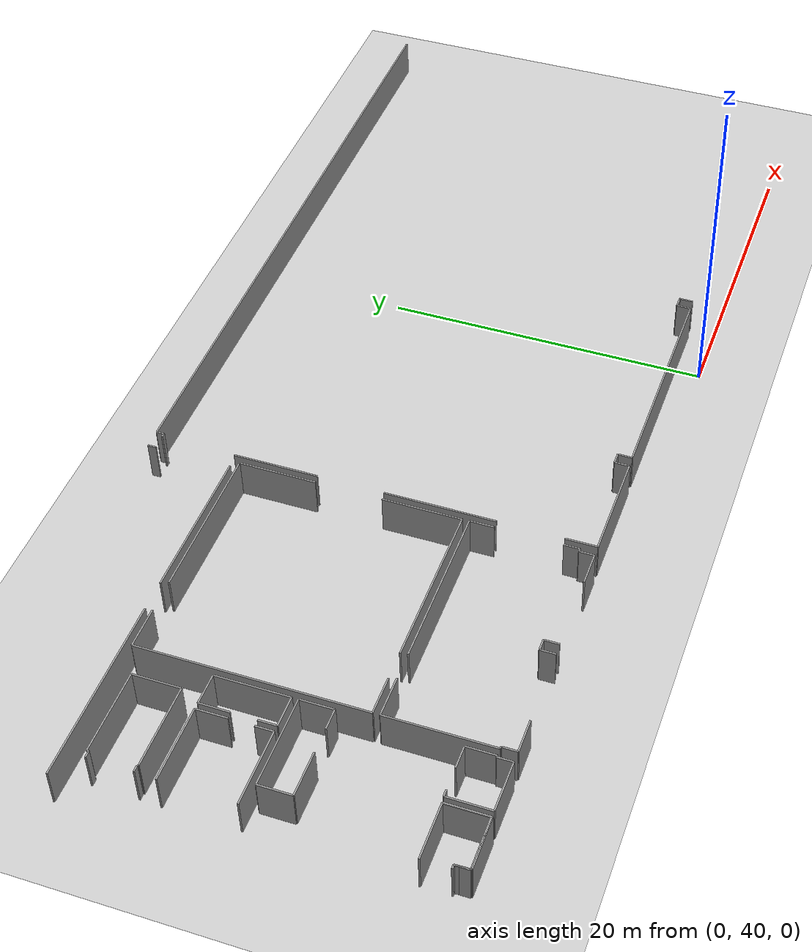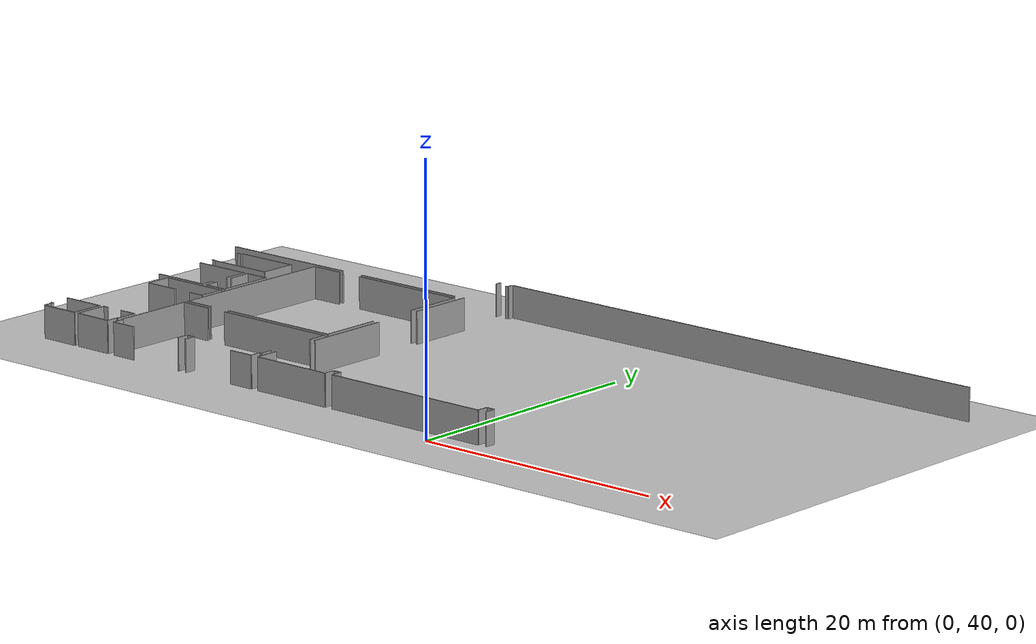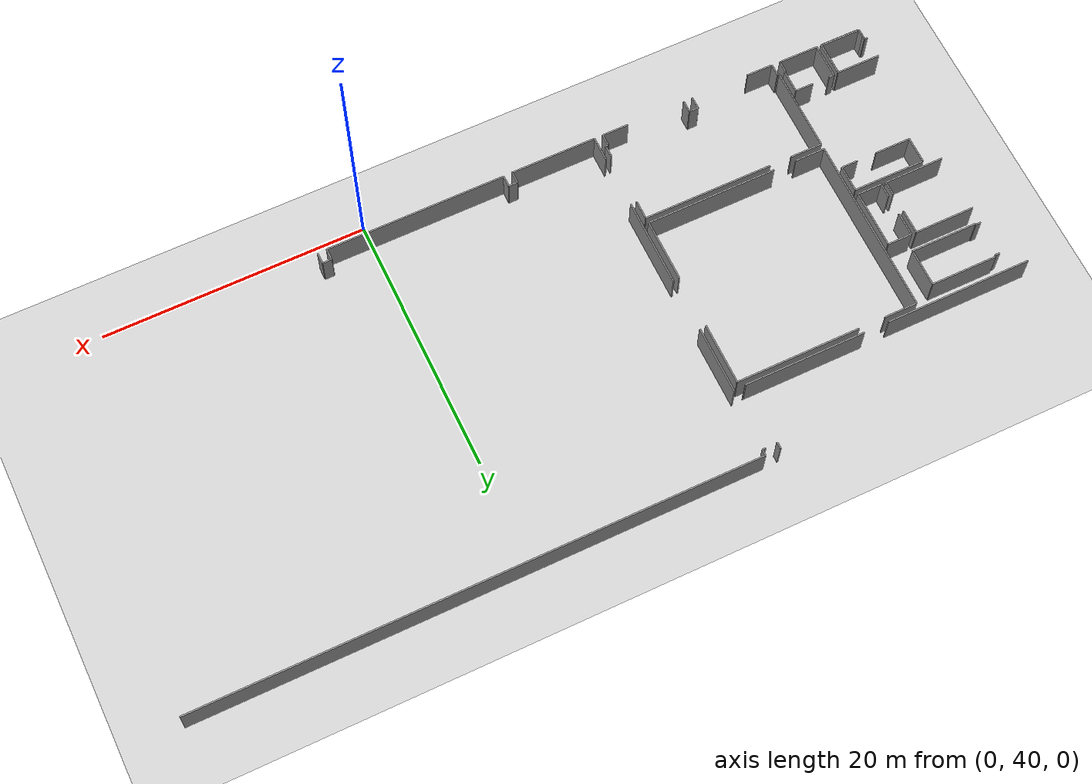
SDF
<sdf version="1.6">
 <world name="default">
  <model name="ground_plane">
   <static>1</static>
   <link name="link">
    <collision name="collision">
     <geometry><plane><normal>0 0 1</normal><size>100 100</size></plane></geometry>
     <surface><friction><ode><mu>100</mu><mu2>50</mu2></ode></friction></surface>
    </collision>
    <visual name="visual">
     <cast_shadows>0</cast_shadows>
     <geometry><plane><normal>0 0 1</normal><size>100 100</size></plane></geometry>
     <material>
      <script><uri>file://media/materials/scripts/gazebo.material</uri><name>Gazebo/Grey</name></script>
     </material>
    </visual>
   </link>
  </model>
  <model name="0510035519_A_40_1_102">
   <static>1</static>
   <link name="Wall_176">
    <collision name="Wall_176_Collision">
     <geometry><box><size>0.525098487737 0.1 2.5</size></box></geometry>
     <pose>0.262549243868 0 1.25 0 0 0</pose>
    </collision>
    <visual name="Wall_176_Visual">
     <pose>0.262549243868 0 1.25 0 0 0</pose>
     <geometry><box><size>0.525098487737 0.1 2.5</size></box></geometry>
     <material>
      <script><uri>file://media/materials/scripts/gazebo.material</uri><name>Gazebo/Grey</name></script>
      <ambient>1 1 1 1</ambient>
     </material>
    </visual>
    <pose>98.0942940653 -0.10776464608 0 0 0 -1.57079632679</pose>
   </link>
   <link name="Wall_177">
    <collision name="Wall_177_Collision">
     <geometry><box><size>0.0571864277545 0.1 2.5</size></box></geometry>
     <pose>0.0285932138772 0 1.25 0 0 0</pose>
    </collision>
    <visual name="Wall_177_Visual">
     <pose>0.0285932138772 0 1.25 0 0 0</pose>
     <geometry><box><size>0.0571864277545 0.1 2.5</size></box></geometry>
     <material>
      <script><uri>file://media/materials/scripts/gazebo.material</uri><name>Gazebo/Grey</name></script>
      <ambient>1 1 1 1</ambient>
     </material>
    </visual>
    <pose>98.0942940653 -5.26242216292 0 0 0 -1.57079632679</pose>
   </link>
   <link name="Wall_178">
    <collision name="Wall_178_Collision">
     <geometry><box><size>9.27945101029 0.1 2.5</size></box></geometry>
     <pose>4.63972550515 0 1.25 0 0 0</pose>
    </collision>
    <visual name="Wall_178_Visual">
     <pose>4.63972550515 0 1.25 0 0 0</pose>
     <geometry><box><size>9.27945101029 0.1 2.5</size></box></geometry>
     <material>
      <script><uri>file://media/materials/scripts/gazebo.material</uri><name>Gazebo/Grey</name></script>
      <ambient>1 1 1 1</ambient>
     </material>
    </visual>
    <pose>98.0942940653 -5.31960859067 0 0 0 3.14159265359</pose>
   </link>
   <link name="Wall_179">
    <collision name="Wall_179_Collision">
     <geometry><box><size>11.172194688 0.1 2.5</size></box></geometry>
     <pose>5.58609734401 0 1.25 0 0 0</pose>
    </collision>
    <visual name="Wall_179_Visual">
     <pose>5.58609734401 0 1.25 0 0 0</pose>
     <geometry><box><size>11.172194688 0.1 2.5</size></box></geometry>
     <material>
      <script><uri>file://media/materials/scripts/gazebo.material</uri><name>Gazebo/Grey</name></script>
      <ambient>1 1 1 1</ambient>
     </material>
    </visual>
    <pose>86.9264201296 -5.31960859067 0 0 0 3.14159265359</pose>
   </link>
   <link name="Wall_185">
    <collision name="Wall_185_Collision">
     <geometry><box><size>42.4330918795 0.1 2.5</size></box></geometry>
     <pose>21.2165459398 0 1.25 0 0 0</pose>
    </collision>
    <visual name="Wall_185_Visual">
     <pose>21.2165459398 0 1.25 0 0 0</pose>
     <geometry><box><size>42.4330918795 0.1 2.5</size></box></geometry>
     <material>
      <script><uri>file://media/materials/scripts/gazebo.material</uri><name>Gazebo/Grey</name></script>
      <ambient>1 1 1 1</ambient>
     </material>
    </visual>
    <pose>99.2474266108 -0.114881179311 0 0 0 0.0</pose>
   </link>
   <link name="Wall_197">
    <collision name="Wall_197_Collision">
     <geometry><box><size>0.855763121108 0.1 2.5</size></box></geometry>
     <pose>0.427881560554 0 1.25 0 0 0</pose>
    </collision>
    <visual name="Wall_197_Visual">
     <pose>0.427881560554 0 1.25 0 0 0</pose>
     <geometry><box><size>0.855763121108 0.1 2.5</size></box></geometry>
     <material>
      <script><uri>file://media/materials/scripts/gazebo.material</uri><name>Gazebo/Grey</name></script>
      <ambient>1 1 1 1</ambient>
     </material>
    </visual>
    <pose>120.61227602 -27.1193290126 0 0 0 1.57079632679</pose>
   </link>
   <link name="Wall_198">
    <collision name="Wall_198_Collision">
     <geometry><box><size>0.689541237768 0.1 2.5</size></box></geometry>
     <pose>0.344770618884 0 1.25 0 0 0</pose>
    </collision>
    <visual name="Wall_198_Visual">
     <pose>0.344770618884 0 1.25 0 0 0</pose>
     <geometry><box><size>0.689541237768 0.1 2.5</size></box></geometry>
     <material>
      <script><uri>file://media/materials/scripts/gazebo.material</uri><name>Gazebo/Grey</name></script>
      <ambient>1 1 1 1</ambient>
     </material>
    </visual>
    <pose>120.61227602 -26.2635658915 0 0 0 3.14159265359</pose>
   </link>
   <link name="Wall_199">
    <collision name="Wall_199_Collision">
     <geometry><box><size>0.872537806583 0.1 2.5</size></box></geometry>
     <pose>0.436268903291 0 1.25 0 0 0</pose>
    </collision>
    <visual name="Wall_199_Visual">
     <pose>0.436268903291 0 1.25 0 0 0</pose>
     <geometry><box><size>0.872537806583 0.1 2.5</size></box></geometry>
     <material>
      <script><uri>file://media/materials/scripts/gazebo.material</uri><name>Gazebo/Grey</name></script>
      <ambient>1 1 1 1</ambient>
     </material>
    </visual>
    <pose>119.922734782 -26.2635658915 0 0 0 -1.57079632679</pose>
   </link>
   <link name="Wall_200">
    <collision name="Wall_200_Collision">
     <geometry><box><size>13.717117804 0.1 2.5</size></box></geometry>
     <pose>6.85855890202 0 1.25 0 0 0</pose>
    </collision>
    <visual name="Wall_200_Visual">
     <pose>6.85855890202 0 1.25 0 0 0</pose>
     <geometry><box><size>13.717117804 0.1 2.5</size></box></geometry>
     <material>
      <script><uri>file://media/materials/scripts/gazebo.material</uri><name>Gazebo/Grey</name></script>
      <ambient>1 1 1 1</ambient>
     </material>
    </visual>
    <pose>119.922734782 -27.1361036981 0 0 0 3.14159265359</pose>
   </link>
   <link name="Wall_201">
    <collision name="Wall_201_Collision">
     <geometry><box><size>0.867200406659 0.1 2.5</size></box></geometry>
     <pose>0.43360020333 0 1.25 0 0 0</pose>
    </collision>
    <visual name="Wall_201_Visual">
     <pose>0.43360020333 0 1.25 0 0 0</pose>
     <geometry><box><size>0.867200406659 0.1 2.5</size></box></geometry>
     <material>
      <script><uri>file://media/materials/scripts/gazebo.material</uri><name>Gazebo/Grey</name></script>
      <ambient>1 1 1 1</ambient>
     </material>
    </visual>
    <pose>106.205616978 -27.1361036981 0 0 0 1.57079632679</pose>
   </link>
   <link name="Wall_202">
    <collision name="Wall_202_Collision">
     <geometry><box><size>0.686237133054 0.1 2.5</size></box></geometry>
     <pose>0.343118566527 0 1.25 0 0 0</pose>
    </collision>
    <visual name="Wall_202_Visual">
     <pose>0.343118566527 0 1.25 0 0 0</pose>
     <geometry><box><size>0.686237133054 0.1 2.5</size></box></geometry>
     <material>
      <script><uri>file://media/materials/scripts/gazebo.material</uri><name>Gazebo/Grey</name></script>
      <ambient>1 1 1 1</ambient>
     </material>
    </visual>
    <pose>106.205616978 -26.2689032914 0 0 0 3.14159265359</pose>
   </link>
   <link name="Wall_203">
    <collision name="Wall_203_Collision">
     <geometry><box><size>0.888804168255 0.1 2.5</size></box></geometry>
     <pose>0.444402084128 0 1.25 0 0 0</pose>
    </collision>
    <visual name="Wall_203_Visual">
     <pose>0.444402084128 0 1.25 0 0 0</pose>
     <geometry><box><size>0.888804168255 0.1 2.5</size></box></geometry>
     <material>
      <script><uri>file://media/materials/scripts/gazebo.material</uri><name>Gazebo/Grey</name></script>
      <ambient>1 1 1 1</ambient>
     </material>
    </visual>
    <pose>105.519379845 -26.2689032914 0 0 0 -1.57079632679</pose>
   </link>
   <link name="Wall_204">
    <collision name="Wall_204_Collision">
     <geometry><box><size>6.53348583047 0.1 2.5</size></box></geometry>
     <pose>3.26674291524 0 1.25 0 0 0</pose>
    </collision>
    <visual name="Wall_204_Visual">
     <pose>3.26674291524 0 1.25 0 0 0</pose>
     <geometry><box><size>6.53348583047 0.1 2.5</size></box></geometry>
     <material>
      <script><uri>file://media/materials/scripts/gazebo.material</uri><name>Gazebo/Grey</name></script>
      <ambient>1 1 1 1</ambient>
     </material>
    </visual>
    <pose>105.519379845 -27.1577074597 0 0 0 3.14159265359</pose>
   </link>
   <link name="Wall_205">
    <collision name="Wall_205_Collision">
     <geometry><box><size>1.91333079171 0.1 2.5</size></box></geometry>
     <pose>0.956665395857 0 1.25 0 0 0</pose>
    </collision>
    <visual name="Wall_205_Visual">
     <pose>0.956665395857 0 1.25 0 0 0</pose>
     <geometry><box><size>1.91333079171 0.1 2.5</size></box></geometry>
     <material>
      <script><uri>file://media/materials/scripts/gazebo.material</uri><name>Gazebo/Grey</name></script>
      <ambient>1 1 1 1</ambient>
     </material>
    </visual>
    <pose>98.9858940145 -27.1577074597 0 0 0 1.57079632679</pose>
   </link>
   <link name="Wall_206">
    <collision name="Wall_206_Collision">
     <geometry><box><size>6.7640106748 0.1 2.5</size></box></geometry>
     <pose>3.3820053374 0 1.25 0 0 0</pose>
    </collision>
    <visual name="Wall_206_Visual">
     <pose>3.3820053374 0 1.25 0 0 0</pose>
     <geometry><box><size>6.7640106748 0.1 2.5</size></box></geometry>
     <material>
      <script><uri>file://media/materials/scripts/gazebo.material</uri><name>Gazebo/Grey</name></script>
      <ambient>1 1 1 1</ambient>
     </material>
    </visual>
    <pose>98.9858940145 -21.2408184013 0 0 0 1.57079632679</pose>
   </link>
   <link name="Wall_207">
    <collision name="Wall_207_Collision">
     <geometry><box><size>5.20498157326 0.1 2.5</size></box></geometry>
     <pose>2.60249078663 0 1.25 0 0 0</pose>
    </collision>
    <visual name="Wall_207_Visual">
     <pose>2.60249078663 0 1.25 0 0 0</pose>
     <geometry><box><size>5.20498157326 0.1 2.5</size></box></geometry>
     <material>
      <script><uri>file://media/materials/scripts/gazebo.material</uri><name>Gazebo/Grey</name></script>
      <ambient>1 1 1 1</ambient>
     </material>
    </visual>
    <pose>98.9858940145 -10.4025924514 0 0 0 1.57079632679</pose>
   </link>
   <link name="Wall_208">
    <collision name="Wall_208_Collision">
     <geometry><box><size>0.247807853603 0.1 2.5</size></box></geometry>
     <pose>0.123903926801 0 1.25 0 0 0</pose>
    </collision>
    <visual name="Wall_208_Visual">
     <pose>0.123903926801 0 1.25 0 0 0</pose>
     <geometry><box><size>0.247807853603 0.1 2.5</size></box></geometry>
     <material>
      <script><uri>file://media/materials/scripts/gazebo.material</uri><name>Gazebo/Grey</name></script>
      <ambient>1 1 1 1</ambient>
     </material>
    </visual>
    <pose>98.9858940145 -0.584572372601 0 0 0 0.0</pose>
   </link>
   <link name="Wall_209">
    <collision name="Wall_209_Collision">
     <geometry><box><size>0.469891674341 0.1 2.5</size></box></geometry>
     <pose>0.234945837171 0 1.25 0 0 0</pose>
    </collision>
    <visual name="Wall_209_Visual">
     <pose>0.234945837171 0 1.25 0 0 0</pose>
     <geometry><box><size>0.469891674341 0.1 2.5</size></box></geometry>
     <material>
      <script><uri>file://media/materials/scripts/gazebo.material</uri><name>Gazebo/Grey</name></script>
      <ambient>1 1 1 1</ambient>
     </material>
    </visual>
    <pose>99.2337018681 -0.584572372601 0 0 0 1.54158386008</pose>
   </link>
   <link name="Wall_216">
    <collision name="Wall_216_Collision">
     <geometry><box><size>13.622061253 0.1 2.5</size></box></geometry>
     <pose>6.81103062651 0 1.25 0 0 0</pose>
    </collision>
    <visual name="Wall_216_Visual">
     <pose>6.81103062651 0 1.25 0 0 0</pose>
     <geometry><box><size>13.622061253 0.1 2.5</size></box></geometry>
     <material>
      <script><uri>file://media/materials/scripts/gazebo.material</uri><name>Gazebo/Grey</name></script>
      <ambient>1 1 1 1</ambient>
     </material>
    </visual>
    <pose>84.4501207269 -19.3671368662 0 0 0 1.57079632679</pose>
   </link>
   <link name="Wall_217">
    <collision name="Wall_217_Collision">
     <geometry><box><size>2.50222391663 0.1 2.5</size></box></geometry>
     <pose>1.25111195832 0 1.25 0 0 0</pose>
    </collision>
    <visual name="Wall_217_Visual">
     <pose>1.25111195832 0 1.25 0 0 0</pose>
     <geometry><box><size>2.50222391663 0.1 2.5</size></box></geometry>
     <material>
      <script><uri>file://media/materials/scripts/gazebo.material</uri><name>Gazebo/Grey</name></script>
      <ambient>1 1 1 1</ambient>
     </material>
    </visual>
    <pose>84.4501207269 -5.74507561317 0 0 0 0.0</pose>
   </link>
   <link name="Wall_218">
    <collision name="Wall_218_Collision">
     <geometry><box><size>9.49752192146 0.1 2.5</size></box></geometry>
     <pose>4.74876096073 0 1.25 0 0 0</pose>
    </collision>
    <visual name="Wall_218_Visual">
     <pose>4.74876096073 0 1.25 0 0 0</pose>
     <geometry><box><size>9.49752192146 0.1 2.5</size></box></geometry>
     <material>
      <script><uri>file://media/materials/scripts/gazebo.material</uri><name>Gazebo/Grey</name></script>
      <ambient>1 1 1 1</ambient>
     </material>
    </visual>
    <pose>88.9993645952 -5.74507561317 0 0 0 0.0</pose>
   </link>
   <link name="Wall_219">
    <collision name="Wall_219_Collision">
     <geometry><box><size>4.73757783708 0.1 2.5</size></box></geometry>
     <pose>2.36878891854 0 1.25 0 0 0</pose>
    </collision>
    <visual name="Wall_219_Visual">
     <pose>2.36878891854 0 1.25 0 0 0</pose>
     <geometry><box><size>4.73757783708 0.1 2.5</size></box></geometry>
     <material>
      <script><uri>file://media/materials/scripts/gazebo.material</uri><name>Gazebo/Grey</name></script>
      <ambient>1 1 1 1</ambient>
     </material>
    </visual>
    <pose>98.4968865167 -5.74507561317 0 0 0 -1.57079632679</pose>
   </link>
   <link name="Wall_220">
    <collision name="Wall_220_Collision">
     <geometry><box><size>4.81077646461 0.1 2.5</size></box></geometry>
     <pose>2.4053882323 0 1.25 0 0 0</pose>
    </collision>
    <visual name="Wall_220_Visual">
     <pose>2.4053882323 0 1.25 0 0 0</pose>
     <geometry><box><size>4.81077646461 0.1 2.5</size></box></geometry>
     <material>
      <script><uri>file://media/materials/scripts/gazebo.material</uri><name>Gazebo/Grey</name></script>
      <ambient>1 1 1 1</ambient>
     </material>
    </visual>
    <pose>98.4968865167 -14.5507688398 0 0 0 -1.57079632679</pose>
   </link>
   <link name="Wall_221">
    <collision name="Wall_221_Collision">
     <geometry><box><size>9.99034184776 0.1 2.5</size></box></geometry>
     <pose>4.99517092388 0 1.25 0 0 0</pose>
    </collision>
    <visual name="Wall_221_Visual">
     <pose>4.99517092388 0 1.25 0 0 0</pose>
     <geometry><box><size>9.99034184776 0.1 2.5</size></box></geometry>
     <material>
      <script><uri>file://media/materials/scripts/gazebo.material</uri><name>Gazebo/Grey</name></script>
      <ambient>1 1 1 1</ambient>
     </material>
    </visual>
    <pose>98.4968865167 -19.3615453044 0 0 0 3.14159265359</pose>
   </link>
   <link name="Wall_222">
    <collision name="Wall_222_Collision">
     <geometry><box><size>2.31338838163 0.1 2.5</size></box></geometry>
     <pose>1.15669419082 0 1.25 0 0 0</pose>
    </collision>
    <visual name="Wall_222_Visual">
     <pose>1.15669419082 0 1.25 0 0 0</pose>
     <geometry><box><size>2.31338838163 0.1 2.5</size></box></geometry>
     <material>
      <script><uri>file://media/materials/scripts/gazebo.material</uri><name>Gazebo/Grey</name></script>
      <ambient>1 1 1 1</ambient>
     </material>
    </visual>
    <pose>86.763502351 -19.3615453044 0 0 0 -3.1391756071</pose>
   </link>
   <link name="Wall_223">
    <collision name="Wall_223_Collision">
     <geometry><box><size>6.46943703139 0.1 2.5</size></box></geometry>
     <pose>3.23471851569 0 1.25 0 0 0</pose>
    </collision>
    <visual name="Wall_223_Visual">
     <pose>3.23471851569 0 1.25 0 0 0</pose>
     <geometry><box><size>6.46943703139 0.1 2.5</size></box></geometry>
     <material>
      <script><uri>file://media/materials/scripts/gazebo.material</uri><name>Gazebo/Grey</name></script>
      <ambient>1 1 1 1</ambient>
     </material>
    </visual>
    <pose>84.4534248316 -26.2551785487 0 0 0 1.57079632679</pose>
   </link>
   <link name="Wall_224">
    <collision name="Wall_224_Collision">
     <geometry><box><size>2.45393315542 0.1 2.5</size></box></geometry>
     <pose>1.22696657771 0 1.25 0 0 0</pose>
    </collision>
    <visual name="Wall_224_Visual">
     <pose>1.22696657771 0 1.25 0 0 0</pose>
     <geometry><box><size>2.45393315542 0.1 2.5</size></box></geometry>
     <material>
      <script><uri>file://media/materials/scripts/gazebo.material</uri><name>Gazebo/Grey</name></script>
      <ambient>1 1 1 1</ambient>
     </material>
    </visual>
    <pose>84.4534248316 -19.7857415173 0 0 0 0.0</pose>
   </link>
   <link name="Wall_225">
    <collision name="Wall_225_Collision">
     <geometry><box><size>9.93823865803 0.1 2.5</size></box></geometry>
     <pose>4.96911932901 0 1.25 0 0 0</pose>
    </collision>
    <visual name="Wall_225_Visual">
     <pose>4.96911932901 0 1.25 0 0 0</pose>
     <geometry><box><size>9.93823865803 0.1 2.5</size></box></geometry>
     <material>
      <script><uri>file://media/materials/scripts/gazebo.material</uri><name>Gazebo/Grey</name></script>
      <ambient>1 1 1 1</ambient>
     </material>
    </visual>
    <pose>88.5888931249 -19.7857415173 0 0 0 0.0</pose>
   </link>
   <link name="Wall_226">
    <collision name="Wall_226_Collision">
     <geometry><box><size>1.47668064557 0.1 2.5</size></box></geometry>
     <pose>0.738340322786 0 1.25 0 0 0</pose>
    </collision>
    <visual name="Wall_226_Visual">
     <pose>0.738340322786 0 1.25 0 0 0</pose>
     <geometry><box><size>1.47668064557 0.1 2.5</size></box></geometry>
     <material>
      <script><uri>file://media/materials/scripts/gazebo.material</uri><name>Gazebo/Grey</name></script>
      <ambient>1 1 1 1</ambient>
     </material>
    </visual>
    <pose>98.5271317829 -19.7857415173 0 0 0 -1.57079632679</pose>
   </link>
   <link name="Wall_227">
    <collision name="Wall_227_Collision">
     <geometry><box><size>0.950819672131 0.1 2.5</size></box></geometry>
     <pose>0.475409836066 0 1.25 0 0 0</pose>
    </collision>
    <visual name="Wall_227_Visual">
     <pose>0.475409836066 0 1.25 0 0 0</pose>
     <geometry><box><size>0.950819672131 0.1 2.5</size></box></geometry>
     <material>
      <script><uri>file://media/materials/scripts/gazebo.material</uri><name>Gazebo/Grey</name></script>
      <ambient>1 1 1 1</ambient>
     </material>
    </visual>
    <pose>98.5271317829 -25.3180836193 0 0 0 -1.57079632679</pose>
   </link>
   <link name="Wall_228">
    <collision name="Wall_228_Collision">
     <geometry><box><size>0.196721311475 0.1 2.5</size></box></geometry>
     <pose>0.0983606557377 0 1.25 0 0 0</pose>
    </collision>
    <visual name="Wall_228_Visual">
     <pose>0.0983606557377 0 1.25 0 0 0</pose>
     <geometry><box><size>0.196721311475 0.1 2.5</size></box></geometry>
     <material>
      <script><uri>file://media/materials/scripts/gazebo.material</uri><name>Gazebo/Grey</name></script>
      <ambient>1 1 1 1</ambient>
     </material>
    </visual>
    <pose>98.5271317829 -26.2689032914 0 0 0 3.14159265359</pose>
   </link>
   <link name="Wall_229">
    <collision name="Wall_229_Collision">
     <geometry><box><size>0.888804168255 0.1 2.5</size></box></geometry>
     <pose>0.444402084128 0 1.25 0 0 0</pose>
    </collision>
    <visual name="Wall_229_Visual">
     <pose>0.444402084128 0 1.25 0 0 0</pose>
     <geometry><box><size>0.888804168255 0.1 2.5</size></box></geometry>
     <material>
      <script><uri>file://media/materials/scripts/gazebo.material</uri><name>Gazebo/Grey</name></script>
      <ambient>1 1 1 1</ambient>
     </material>
    </visual>
    <pose>98.3304104715 -26.2689032914 0 0 0 -1.57079632679</pose>
   </link>
   <link name="Wall_230">
    <collision name="Wall_230_Collision">
     <geometry><box><size>2.0228745711 0.1 2.5</size></box></geometry>
     <pose>1.01143728555 0 1.25 0 0 0</pose>
    </collision>
    <visual name="Wall_230_Visual">
     <pose>1.01143728555 0 1.25 0 0 0</pose>
     <geometry><box><size>2.0228745711 0.1 2.5</size></box></geometry>
     <material>
      <script><uri>file://media/materials/scripts/gazebo.material</uri><name>Gazebo/Grey</name></script>
      <ambient>1 1 1 1</ambient>
     </material>
    </visual>
    <pose>98.3304104715 -27.1577074597 0 0 0 3.14159265359</pose>
   </link>
   <link name="Wall_231">
    <collision name="Wall_231_Collision">
     <geometry><box><size>0.910662091752 0.1 2.5</size></box></geometry>
     <pose>0.455331045876 0 1.25 0 0 0</pose>
    </collision>
    <visual name="Wall_231_Visual">
     <pose>0.455331045876 0 1.25 0 0 0</pose>
     <geometry><box><size>0.910662091752 0.1 2.5</size></box></geometry>
     <material>
      <script><uri>file://media/materials/scripts/gazebo.material</uri><name>Gazebo/Grey</name></script>
      <ambient>1 1 1 1</ambient>
     </material>
    </visual>
    <pose>91.7898081078 -27.1577074597 0 0 0 1.57079632679</pose>
   </link>
   <link name="Wall_232">
    <collision name="Wall_232_Collision">
     <geometry><box><size>0.697928580506 0.1 2.5</size></box></geometry>
     <pose>0.348964290253 0 1.25 0 0 0</pose>
    </collision>
    <visual name="Wall_232_Visual">
     <pose>0.348964290253 0 1.25 0 0 0</pose>
     <geometry><box><size>0.697928580506 0.1 2.5</size></box></geometry>
     <material>
      <script><uri>file://media/materials/scripts/gazebo.material</uri><name>Gazebo/Grey</name></script>
      <ambient>1 1 1 1</ambient>
     </material>
    </visual>
    <pose>91.7898081078 -26.2470453679 0 0 0 3.14159265359</pose>
   </link>
   <link name="Wall_233">
    <collision name="Wall_233_Collision">
     <geometry><box><size>0.930486720041 0.1 2.5</size></box></geometry>
     <pose>0.46524336002 0 1.25 0 0 0</pose>
    </collision>
    <visual name="Wall_233_Visual">
     <pose>0.46524336002 0 1.25 0 0 0</pose>
     <geometry><box><size>0.930486720041 0.1 2.5</size></box></geometry>
     <material>
      <script><uri>file://media/materials/scripts/gazebo.material</uri><name>Gazebo/Grey</name></script>
      <ambient>1 1 1 1</ambient>
     </material>
    </visual>
    <pose>91.0918795273 -26.2470453679 0 0 0 -1.57079632679</pose>
   </link>
   <link name="Wall_234">
    <collision name="Wall_234_Collision">
     <geometry><box><size>2.01906214258 0.1 2.5</size></box></geometry>
     <pose>1.00953107129 0 1.25 0 0 0</pose>
    </collision>
    <visual name="Wall_234_Visual">
     <pose>1.00953107129 0 1.25 0 0 0</pose>
     <geometry><box><size>2.01906214258 0.1 2.5</size></box></geometry>
     <material>
      <script><uri>file://media/materials/scripts/gazebo.material</uri><name>Gazebo/Grey</name></script>
      <ambient>1 1 1 1</ambient>
     </material>
    </visual>
    <pose>86.5970263058 -27.1775320879 0 0 0 3.14159265359</pose>
   </link>
   <link name="Wall_235">
    <collision name="Wall_235_Collision">
     <geometry><box><size>0.90557885373 0.1 2.5</size></box></geometry>
     <pose>0.452789426865 0 1.25 0 0 0</pose>
    </collision>
    <visual name="Wall_235_Visual">
     <pose>0.452789426865 0 1.25 0 0 0</pose>
     <geometry><box><size>0.90557885373 0.1 2.5</size></box></geometry>
     <material>
      <script><uri>file://media/materials/scripts/gazebo.material</uri><name>Gazebo/Grey</name></script>
      <ambient>1 1 1 1</ambient>
     </material>
    </visual>
    <pose>84.5779641632 -27.1775320879 0 0 0 1.57079632679</pose>
   </link>
   <link name="Wall_236">
    <collision name="Wall_236_Collision">
     <geometry><box><size>0.125663977244 0.1 2.5</size></box></geometry>
     <pose>0.0628319886219 0 1.25 0 0 0</pose>
    </collision>
    <visual name="Wall_236_Visual">
     <pose>0.0628319886219 0 1.25 0 0 0</pose>
     <geometry><box><size>0.125663977244 0.1 2.5</size></box></geometry>
     <material>
      <script><uri>file://media/materials/scripts/gazebo.material</uri><name>Gazebo/Grey</name></script>
      <ambient>1 1 1 1</ambient>
     </material>
    </visual>
    <pose>84.5779641632 -26.2719532342 0 0 0 3.00770458106</pose>
   </link>
   <link name="Wall_237">
    <collision name="Wall_237_Collision">
     <geometry><box><size>5.04079298513 0.1 2.5</size></box></geometry>
     <pose>2.52039649257 0 1.25 0 0 0</pose>
    </collision>
    <visual name="Wall_237_Visual">
     <pose>2.52039649257 0 1.25 0 0 0</pose>
     <geometry><box><size>5.04079298513 0.1 2.5</size></box></geometry>
     <material>
      <script><uri>file://media/materials/scripts/gazebo.material</uri><name>Gazebo/Grey</name></script>
      <ambient>1 1 1 1</ambient>
     </material>
    </visual>
    <pose>77.6772143856 -6.5619519634 0 0 0 0.0</pose>
   </link>
   <link name="Wall_238">
    <collision name="Wall_238_Collision">
     <geometry><box><size>2.8773668827 0.1 2.5</size></box></geometry>
     <pose>1.43868344135 0 1.25 0 0 0</pose>
    </collision>
    <visual name="Wall_238_Visual">
     <pose>1.43868344135 0 1.25 0 0 0</pose>
     <geometry><box><size>2.8773668827 0.1 2.5</size></box></geometry>
     <material>
      <script><uri>file://media/materials/scripts/gazebo.material</uri><name>Gazebo/Grey</name></script>
      <ambient>1 1 1 1</ambient>
     </material>
    </visual>
    <pose>82.7180073707 -6.5619519634 0 0 0 -1.57079632679</pose>
   </link>
   <link name="Wall_239">
    <collision name="Wall_239_Collision">
     <geometry><box><size>5.06570085144 0.1 2.5</size></box></geometry>
     <pose>2.53285042572 0 1.25 0 0 0</pose>
    </collision>
    <visual name="Wall_239_Visual">
     <pose>2.53285042572 0 1.25 0 0 0</pose>
     <geometry><box><size>5.06570085144 0.1 2.5</size></box></geometry>
     <material>
      <script><uri>file://media/materials/scripts/gazebo.material</uri><name>Gazebo/Grey</name></script>
      <ambient>1 1 1 1</ambient>
     </material>
    </visual>
    <pose>82.7180073707 -9.4393188461 0 0 0 3.14159265359</pose>
   </link>
   <link name="Wall_240">
    <collision name="Wall_240_Collision">
     <geometry><box><size>0.0660820942941 0.1 2.5</size></box></geometry>
     <pose>0.033041047147 0 1.25 0 0 0</pose>
    </collision>
    <visual name="Wall_240_Visual">
     <pose>0.033041047147 0 1.25 0 0 0</pose>
     <geometry><box><size>0.0660820942941 0.1 2.5</size></box></geometry>
     <material>
      <script><uri>file://media/materials/scripts/gazebo.material</uri><name>Gazebo/Grey</name></script>
      <ambient>1 1 1 1</ambient>
     </material>
    </visual>
    <pose>77.6523065193 -9.4393188461 0 0 0 1.57079632679</pose>
   </link>
   <link name="Wall_241">
    <collision name="Wall_241_Collision">
     <geometry><box><size>0.39547591816 0.1 2.5</size></box></geometry>
     <pose>0.19773795908 0 1.25 0 0 0</pose>
    </collision>
    <visual name="Wall_241_Visual">
     <pose>0.19773795908 0 1.25 0 0 0</pose>
     <geometry><box><size>0.39547591816 0.1 2.5</size></box></geometry>
     <material>
      <script><uri>file://media/materials/scripts/gazebo.material</uri><name>Gazebo/Grey</name></script>
      <ambient>1 1 1 1</ambient>
     </material>
    </visual>
    <pose>77.6523065193 -9.37323675181 0 0 0 3.14159265359</pose>
   </link>
   <link name="Wall_242">
    <collision name="Wall_242_Collision">
     <geometry><box><size>0.375142966069 0.1 2.5</size></box></geometry>
     <pose>0.187571483035 0 1.25 0 0 0</pose>
    </collision>
    <visual name="Wall_242_Visual">
     <pose>0.187571483035 0 1.25 0 0 0</pose>
     <geometry><box><size>0.375142966069 0.1 2.5</size></box></geometry>
     <material>
      <script><uri>file://media/materials/scripts/gazebo.material</uri><name>Gazebo/Grey</name></script>
      <ambient>1 1 1 1</ambient>
     </material>
    </visual>
    <pose>77.2568306011 -6.68852459016 0 0 0 0.0</pose>
   </link>
   <link name="Wall_243">
    <collision name="Wall_243_Collision">
     <geometry><box><size>0.134414885691 0.1 2.5</size></box></geometry>
     <pose>0.0672074428456 0 1.25 0 0 0</pose>
    </collision>
    <visual name="Wall_243_Visual">
     <pose>0.0672074428456 0 1.25 0 0 0</pose>
     <geometry><box><size>0.134414885691 0.1 2.5</size></box></geometry>
     <material>
      <script><uri>file://media/materials/scripts/gazebo.material</uri><name>Gazebo/Grey</name></script>
      <ambient>1 1 1 1</ambient>
     </material>
    </visual>
    <pose>77.6319735672 -6.68852459016 0 0 0 1.22751799818</pose>
   </link>
   <link name="Wall_246">
    <collision name="Wall_246_Collision">
     <geometry><box><size>4.56728936332 0.1 2.5</size></box></geometry>
     <pose>2.28364468166 0 1.25 0 0 0</pose>
    </collision>
    <visual name="Wall_246_Visual">
     <pose>2.28364468166 0 1.25 0 0 0</pose>
     <geometry><box><size>4.56728936332 0.1 2.5</size></box></geometry>
     <material>
      <script><uri>file://media/materials/scripts/gazebo.material</uri><name>Gazebo/Grey</name></script>
      <ambient>1 1 1 1</ambient>
     </material>
    </visual>
    <pose>77.1899860211 -10.6321006481 0 0 0 0.0</pose>
   </link>
   <link name="Wall_247">
    <collision name="Wall_247_Collision">
     <geometry><box><size>1.87291904943 0.1 2.5</size></box></geometry>
     <pose>0.936459524717 0 1.25 0 0 0</pose>
    </collision>
    <visual name="Wall_247_Visual">
     <pose>0.936459524717 0 1.25 0 0 0</pose>
     <geometry><box><size>1.87291904943 0.1 2.5</size></box></geometry>
     <material>
      <script><uri>file://media/materials/scripts/gazebo.material</uri><name>Gazebo/Grey</name></script>
      <ambient>1 1 1 1</ambient>
     </material>
    </visual>
    <pose>81.7572753844 -10.6321006481 0 0 0 -1.57079632679</pose>
   </link>
   <link name="Wall_248">
    <collision name="Wall_248_Collision">
     <geometry><box><size>1.08908374635 0.1 2.5</size></box></geometry>
     <pose>0.544541873173 0 1.25 0 0 0</pose>
    </collision>
    <visual name="Wall_248_Visual">
     <pose>0.544541873173 0 1.25 0 0 0</pose>
     <geometry><box><size>1.08908374635 0.1 2.5</size></box></geometry>
     <material>
      <script><uri>file://media/materials/scripts/gazebo.material</uri><name>Gazebo/Grey</name></script>
      <ambient>1 1 1 1</ambient>
     </material>
    </visual>
    <pose>81.7572753844 -13.9669589529 0 0 0 -1.57079632679</pose>
   </link>
   <link name="Wall_249">
    <collision name="Wall_249_Collision">
     <geometry><box><size>4.56729957505 0.1 2.5</size></box></geometry>
     <pose>2.28364978752 0 1.25 0 0 0</pose>
    </collision>
    <visual name="Wall_249_Visual">
     <pose>2.28364978752 0 1.25 0 0 0</pose>
     <geometry><box><size>4.56729957505 0.1 2.5</size></box></geometry>
     <material>
      <script><uri>file://media/materials/scripts/gazebo.material</uri><name>Gazebo/Grey</name></script>
      <ambient>1 1 1 1</ambient>
     </material>
    </visual>
    <pose>81.7572753844 -15.0560426992 0 0 0 -3.13947802124</pose>
   </link>
   <link name="Wall_250">
    <collision name="Wall_250_Collision">
     <geometry><box><size>1.09874189859 0.1 2.5</size></box></geometry>
     <pose>0.549370949295 0 1.25 0 0 0</pose>
    </collision>
    <visual name="Wall_250_Visual">
     <pose>0.549370949295 0 1.25 0 0 0</pose>
     <geometry><box><size>1.09874189859 0.1 2.5</size></box></geometry>
     <material>
      <script><uri>file://media/materials/scripts/gazebo.material</uri><name>Gazebo/Grey</name></script>
      <ambient>1 1 1 1</ambient>
     </material>
    </visual>
    <pose>82.1392807218 -15.0657008514 0 0 0 1.57079632679</pose>
   </link>
   <link name="Wall_251">
    <collision name="Wall_251_Collision">
     <geometry><box><size>1.81115770746 0.1 2.5</size></box></geometry>
     <pose>0.90557885373 0 1.25 0 0 0</pose>
    </collision>
    <visual name="Wall_251_Visual">
     <pose>0.90557885373 0 1.25 0 0 0</pose>
     <geometry><box><size>1.81115770746 0.1 2.5</size></box></geometry>
     <material>
      <script><uri>file://media/materials/scripts/gazebo.material</uri><name>Gazebo/Grey</name></script>
      <ambient>1 1 1 1</ambient>
     </material>
    </visual>
    <pose>82.1392807218 -12.4463082984 0 0 0 1.57079632679</pose>
   </link>
   <link name="Wall_252">
    <collision name="Wall_252_Collision">
     <geometry><box><size>1.87368153514 0.1 2.5</size></box></geometry>
     <pose>0.936840767569 0 1.25 0 0 0</pose>
    </collision>
    <visual name="Wall_252_Visual">
     <pose>0.936840767569 0 1.25 0 0 0</pose>
     <geometry><box><size>1.87368153514 0.1 2.5</size></box></geometry>
     <material>
      <script><uri>file://media/materials/scripts/gazebo.material</uri><name>Gazebo/Grey</name></script>
      <ambient>1 1 1 1</ambient>
     </material>
    </visual>
    <pose>82.1392807218 -10.6351505909 0 0 0 0.0</pose>
   </link>
   <link name="Wall_253">
    <collision name="Wall_253_Collision">
     <geometry><box><size>4.42851696531 0.1 2.5</size></box></geometry>
     <pose>2.21425848265 0 1.25 0 0 0</pose>
    </collision>
    <visual name="Wall_253_Visual">
     <pose>2.21425848265 0 1.25 0 0 0</pose>
     <geometry><box><size>4.42851696531 0.1 2.5</size></box></geometry>
     <material>
      <script><uri>file://media/materials/scripts/gazebo.material</uri><name>Gazebo/Grey</name></script>
      <ambient>1 1 1 1</ambient>
     </material>
    </visual>
    <pose>84.012962257 -10.6351505909 0 0 0 -1.57079632679</pose>
   </link>
   <link name="Wall_254">
    <collision name="Wall_254_Collision">
     <geometry><box><size>1.87368263839 0.1 2.5</size></box></geometry>
     <pose>0.936841319195 0 1.25 0 0 0</pose>
    </collision>
    <visual name="Wall_254_Visual">
     <pose>0.936841319195 0 1.25 0 0 0</pose>
     <geometry><box><size>1.87368263839 0.1 2.5</size></box></geometry>
     <material>
      <script><uri>file://media/materials/scripts/gazebo.material</uri><name>Gazebo/Grey</name></script>
      <ambient>1 1 1 1</ambient>
     </material>
    </visual>
    <pose>84.012962257 -15.0636675562 0 0 0 -3.14050746682</pose>
   </link>
   <link name="Wall_255">
    <collision name="Wall_255_Collision">
     <geometry><box><size>3.10738340323 0.1 2.5</size></box></geometry>
     <pose>1.55369170161 0 1.25 0 0 0</pose>
    </collision>
    <visual name="Wall_255_Visual">
     <pose>1.55369170161 0 1.25 0 0 0</pose>
     <geometry><box><size>3.10738340323 0.1 2.5</size></box></geometry>
     <material>
      <script><uri>file://media/materials/scripts/gazebo.material</uri><name>Gazebo/Grey</name></script>
      <ambient>1 1 1 1</ambient>
     </material>
    </visual>
    <pose>77.3994154276 -27.1610115644 0 0 0 0.0</pose>
   </link>
   <link name="Wall_256">
    <collision name="Wall_256_Collision">
     <geometry><box><size>2.59702630576 0.1 2.5</size></box></geometry>
     <pose>1.29851315288 0 1.25 0 0 0</pose>
    </collision>
    <visual name="Wall_256_Visual">
     <pose>1.29851315288 0 1.25 0 0 0</pose>
     <geometry><box><size>2.59702630576 0.1 2.5</size></box></geometry>
     <material>
      <script><uri>file://media/materials/scripts/gazebo.material</uri><name>Gazebo/Grey</name></script>
      <ambient>1 1 1 1</ambient>
     </material>
    </visual>
    <pose>80.5067988309 -27.1610115644 0 0 0 1.57079632679</pose>
   </link>
   <link name="Wall_257">
    <collision name="Wall_257_Collision">
     <geometry><box><size>3.37399923751 0.1 2.5</size></box></geometry>
     <pose>1.68699961876 0 1.25 0 0 0</pose>
    </collision>
    <visual name="Wall_257_Visual">
     <pose>1.68699961876 0 1.25 0 0 0</pose>
     <geometry><box><size>3.37399923751 0.1 2.5</size></box></geometry>
     <material>
      <script><uri>file://media/materials/scripts/gazebo.material</uri><name>Gazebo/Grey</name></script>
      <ambient>1 1 1 1</ambient>
     </material>
    </visual>
    <pose>80.5067988309 -24.5639852586 0 0 0 3.14159265359</pose>
   </link>
   <link name="Wall_261">
    <collision name="Wall_261_Collision">
     <geometry><box><size>0.905592870689 0.1 2.5</size></box></geometry>
     <pose>0.452796435345 0 1.25 0 0 0</pose>
    </collision>
    <visual name="Wall_261_Visual">
     <pose>0.452796435345 0 1.25 0 0 0</pose>
     <geometry><box><size>0.905592870689 0.1 2.5</size></box></geometry>
     <material>
      <script><uri>file://media/materials/scripts/gazebo.material</uri><name>Gazebo/Grey</name></script>
      <ambient>1 1 1 1</ambient>
     </material>
    </visual>
    <pose>77.3686618376 -26.2559410344 0 0 0 -1.53683017575</pose>
   </link>
   <link name="Wall_262">
    <collision name="Wall_262_Collision">
     <geometry><box><size>2.0218579235 0.1 2.5</size></box></geometry>
     <pose>1.01092896175 0 1.25 0 0 0</pose>
    </collision>
    <visual name="Wall_262_Visual">
     <pose>1.01092896175 0 1.25 0 0 0</pose>
     <geometry><box><size>2.0218579235 0.1 2.5</size></box></geometry>
     <material>
      <script><uri>file://media/materials/scripts/gazebo.material</uri><name>Gazebo/Grey</name></script>
      <ambient>1 1 1 1</ambient>
     </material>
    </visual>
    <pose>78.5238276782 -17.4715974075 0 0 0 1.57079632679</pose>
   </link>
   <link name="Wall_263">
    <collision name="Wall_263_Collision">
     <geometry><box><size>5.49675943576 0.1 2.5</size></box></geometry>
     <pose>2.74837971788 0 1.25 0 0 0</pose>
    </collision>
    <visual name="Wall_263_Visual">
     <pose>2.74837971788 0 1.25 0 0 0</pose>
     <geometry><box><size>5.49675943576 0.1 2.5</size></box></geometry>
     <material>
      <script><uri>file://media/materials/scripts/gazebo.material</uri><name>Gazebo/Grey</name></script>
      <ambient>1 1 1 1</ambient>
     </material>
    </visual>
    <pose>78.5238276782 -15.4497394841 0 0 0 0.0</pose>
   </link>
   <link name="Wall_264">
    <collision name="Wall_264_Collision">
     <geometry><box><size>2.0218579235 0.1 2.5</size></box></geometry>
     <pose>1.01092896175 0 1.25 0 0 0</pose>
    </collision>
    <visual name="Wall_264_Visual">
     <pose>1.01092896175 0 1.25 0 0 0</pose>
     <geometry><box><size>2.0218579235 0.1 2.5</size></box></geometry>
     <material>
      <script><uri>file://media/materials/scripts/gazebo.material</uri><name>Gazebo/Grey</name></script>
      <ambient>1 1 1 1</ambient>
     </material>
    </visual>
    <pose>84.020587114 -15.4497394841 0 0 0 -1.57079632679</pose>
   </link>
   <link name="Wall_265">
    <collision name="Wall_265_Collision">
     <geometry><box><size>1.26369297242 0.1 2.5</size></box></geometry>
     <pose>0.631846486212 0 1.25 0 0 0</pose>
    </collision>
    <visual name="Wall_265_Visual">
     <pose>0.631846486212 0 1.25 0 0 0</pose>
     <geometry><box><size>1.26369297242 0.1 2.5</size></box></geometry>
     <material>
      <script><uri>file://media/materials/scripts/gazebo.material</uri><name>Gazebo/Grey</name></script>
      <ambient>1 1 1 1</ambient>
     </material>
    </visual>
    <pose>84.020587114 -17.4715974075 0 0 0 3.14159265359</pose>
   </link>
   <link name="Wall_266">
    <collision name="Wall_266_Collision">
     <geometry><box><size>2.71749904689 0.1 2.5</size></box></geometry>
     <pose>1.35874952345 0 1.25 0 0 0</pose>
    </collision>
    <visual name="Wall_266_Visual">
     <pose>1.35874952345 0 1.25 0 0 0</pose>
     <geometry><box><size>2.71749904689 0.1 2.5</size></box></geometry>
     <material>
      <script><uri>file://media/materials/scripts/gazebo.material</uri><name>Gazebo/Grey</name></script>
      <ambient>1 1 1 1</ambient>
     </material>
    </visual>
    <pose>81.2413267251 -17.4715974075 0 0 0 3.14159265359</pose>
   </link>
   <link name="Wall_267">
    <collision name="Wall_267_Collision">
     <geometry><box><size>2.64201296226 0.1 2.5</size></box></geometry>
     <pose>1.32100648113 0 1.25 0 0 0</pose>
    </collision>
    <visual name="Wall_267_Visual">
     <pose>1.32100648113 0 1.25 0 0 0</pose>
     <geometry><box><size>2.64201296226 0.1 2.5</size></box></geometry>
     <material>
      <script><uri>file://media/materials/scripts/gazebo.material</uri><name>Gazebo/Grey</name></script>
      <ambient>1 1 1 1</ambient>
     </material>
    </visual>
    <pose>80.8641504638 -27.1442368789 0 0 0 1.57079632679</pose>
   </link>
   <link name="Wall_268">
    <collision name="Wall_268_Collision">
     <geometry><box><size>0.406913203711 0.1 2.5</size></box></geometry>
     <pose>0.203456601855 0 1.25 0 0 0</pose>
    </collision>
    <visual name="Wall_268_Visual">
     <pose>0.203456601855 0 1.25 0 0 0</pose>
     <geometry><box><size>0.406913203711 0.1 2.5</size></box></geometry>
     <material>
      <script><uri>file://media/materials/scripts/gazebo.material</uri><name>Gazebo/Grey</name></script>
      <ambient>1 1 1 1</ambient>
     </material>
    </visual>
    <pose>80.8641504638 -24.5022239166 0 0 0 0.0</pose>
   </link>
   <link name="Wall_269">
    <collision name="Wall_269_Collision">
     <geometry><box><size>1.39509467531 0.1 2.5</size></box></geometry>
     <pose>0.697547337654 0 1.25 0 0 0</pose>
    </collision>
    <visual name="Wall_269_Visual">
     <pose>0.697547337654 0 1.25 0 0 0</pose>
     <geometry><box><size>1.39509467531 0.1 2.5</size></box></geometry>
     <material>
      <script><uri>file://media/materials/scripts/gazebo.material</uri><name>Gazebo/Grey</name></script>
      <ambient>1 1 1 1</ambient>
     </material>
    </visual>
    <pose>82.6171050959 -24.5022239166 0 0 0 0.0</pose>
   </link>
   <link name="Wall_270">
    <collision name="Wall_270_Collision">
     <geometry><box><size>1.74278815606 0.1 2.5</size></box></geometry>
     <pose>0.871394078028 0 1.25 0 0 0</pose>
    </collision>
    <visual name="Wall_270_Visual">
     <pose>0.871394078028 0 1.25 0 0 0</pose>
     <geometry><box><size>1.74278815606 0.1 2.5</size></box></geometry>
     <material>
      <script><uri>file://media/materials/scripts/gazebo.material</uri><name>Gazebo/Grey</name></script>
      <ambient>1 1 1 1</ambient>
     </material>
    </visual>
    <pose>84.0121997713 -24.5022239166 0 0 0 -1.57079632679</pose>
   </link>
   <link name="Wall_271">
    <collision name="Wall_271_Collision">
     <geometry><box><size>0.09886897954 0.1 2.5</size></box></geometry>
     <pose>0.04943448977 0 1.25 0 0 0</pose>
    </collision>
    <visual name="Wall_271_Visual">
     <pose>0.04943448977 0 1.25 0 0 0</pose>
     <geometry><box><size>0.09886897954 0.1 2.5</size></box></geometry>
     <material>
      <script><uri>file://media/materials/scripts/gazebo.material</uri><name>Gazebo/Grey</name></script>
      <ambient>1 1 1 1</ambient>
     </material>
    </visual>
    <pose>84.0121997713 -26.2450120727 0 0 0 3.14159265359</pose>
   </link>
   <link name="Wall_272">
    <collision name="Wall_272_Collision">
     <geometry><box><size>0.915491167874 0.1 2.5</size></box></geometry>
     <pose>0.457745583937 0 1.25 0 0 0</pose>
    </collision>
    <visual name="Wall_272_Visual">
     <pose>0.457745583937 0 1.25 0 0 0</pose>
     <geometry><box><size>0.915491167874 0.1 2.5</size></box></geometry>
     <material>
      <script><uri>file://media/materials/scripts/gazebo.material</uri><name>Gazebo/Grey</name></script>
      <ambient>1 1 1 1</ambient>
     </material>
    </visual>
    <pose>83.9133307917 -26.2450120727 0 0 0 -1.57079632679</pose>
   </link>
   <link name="Wall_273">
    <collision name="Wall_273_Collision">
     <geometry><box><size>3.04922371537 0.1 2.5</size></box></geometry>
     <pose>1.52461185769 0 1.25 0 0 0</pose>
    </collision>
    <visual name="Wall_273_Visual">
     <pose>1.52461185769 0 1.25 0 0 0</pose>
     <geometry><box><size>3.04922371537 0.1 2.5</size></box></geometry>
     <material>
      <script><uri>file://media/materials/scripts/gazebo.material</uri><name>Gazebo/Grey</name></script>
      <ambient>1 1 1 1</ambient>
     </material>
    </visual>
    <pose>83.9133307917 -27.1605032406 0 0 0 3.13625803719</pose>
   </link>
   <link name="Wall_287">
    <collision name="Wall_287_Collision">
     <geometry><box><size>2.55508959207 0.1 2.5</size></box></geometry>
     <pose>1.27754479604 0 1.25 0 0 0</pose>
    </collision>
    <visual name="Wall_287_Visual">
     <pose>1.27754479604 0 1.25 0 0 0</pose>
     <geometry><box><size>2.55508959207 0.1 2.5</size></box></geometry>
     <material>
      <script><uri>file://media/materials/scripts/gazebo.material</uri><name>Gazebo/Grey</name></script>
      <ambient>1 1 1 1</ambient>
     </material>
    </visual>
    <pose>80.4778243741 -24.5639852586 0 0 0 -1.57079632679</pose>
   </link>
   <link name="Wall_288">
    <collision name="Wall_288_Collision">
     <geometry><box><size>3.1000127081 0.1 2.5</size></box></geometry>
     <pose>1.55000635405 0 1.25 0 0 0</pose>
    </collision>
    <visual name="Wall_288_Visual">
     <pose>1.55000635405 0 1.25 0 0 0</pose>
     <geometry><box><size>3.1000127081 0.1 2.5</size></box></geometry>
     <material>
      <script><uri>file://media/materials/scripts/gazebo.material</uri><name>Gazebo/Grey</name></script>
      <ambient>1 1 1 1</ambient>
     </material>
    </visual>
    <pose>80.4778243741 -27.1190748507 0 0 0 3.14159265359</pose>
   </link>
   <link name="Wall_289">
    <collision name="Wall_289_Collision">
     <geometry><box><size>0.867962892362 0.1 2.5</size></box></geometry>
     <pose>0.433981446181 0 1.25 0 0 0</pose>
    </collision>
    <visual name="Wall_289_Visual">
     <pose>0.433981446181 0 1.25 0 0 0</pose>
     <geometry><box><size>0.867962892362 0.1 2.5</size></box></geometry>
     <material>
      <script><uri>file://media/materials/scripts/gazebo.material</uri><name>Gazebo/Grey</name></script>
      <ambient>1 1 1 1</ambient>
     </material>
    </visual>
    <pose>77.377811666 -27.1190748507 0 0 0 1.57079632679</pose>
   </link>
   <link name="Wall_290">
    <collision name="Wall_290_Collision">
     <geometry><box><size>0.230779006227 0.1 2.5</size></box></geometry>
     <pose>0.115389503113 0 1.25 0 0 0</pose>
    </collision>
    <visual name="Wall_290_Visual">
     <pose>0.115389503113 0 1.25 0 0 0</pose>
     <geometry><box><size>0.230779006227 0.1 2.5</size></box></geometry>
     <material>
      <script><uri>file://media/materials/scripts/gazebo.material</uri><name>Gazebo/Grey</name></script>
      <ambient>1 1 1 1</ambient>
     </material>
    </visual>
    <pose>77.377811666 -26.2511119583 0 0 0 3.14159265359</pose>
   </link>
   <pose>-116.6 68.721527513 0 0 0 0</pose>
  </model>
 </world>
</sdf>
